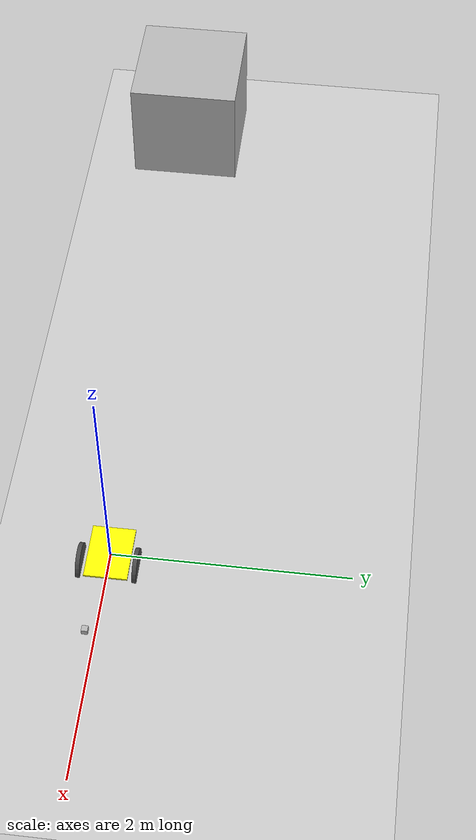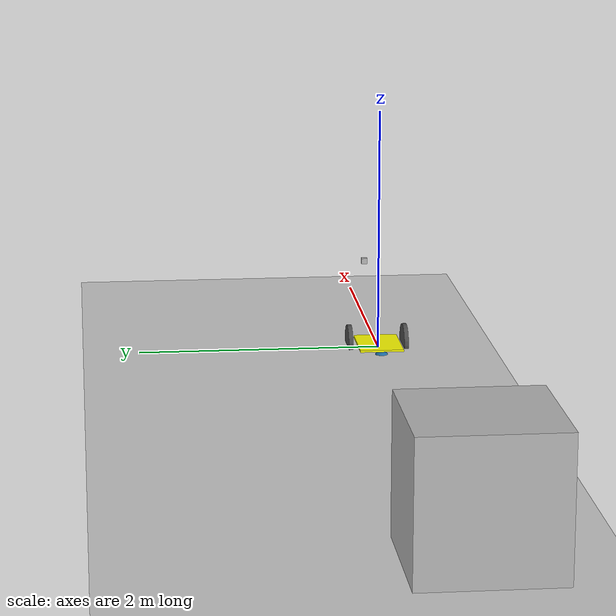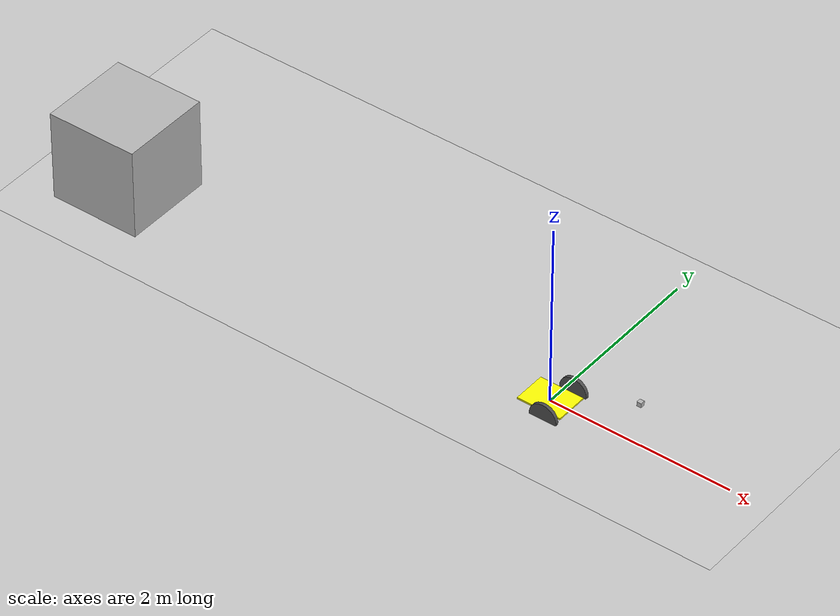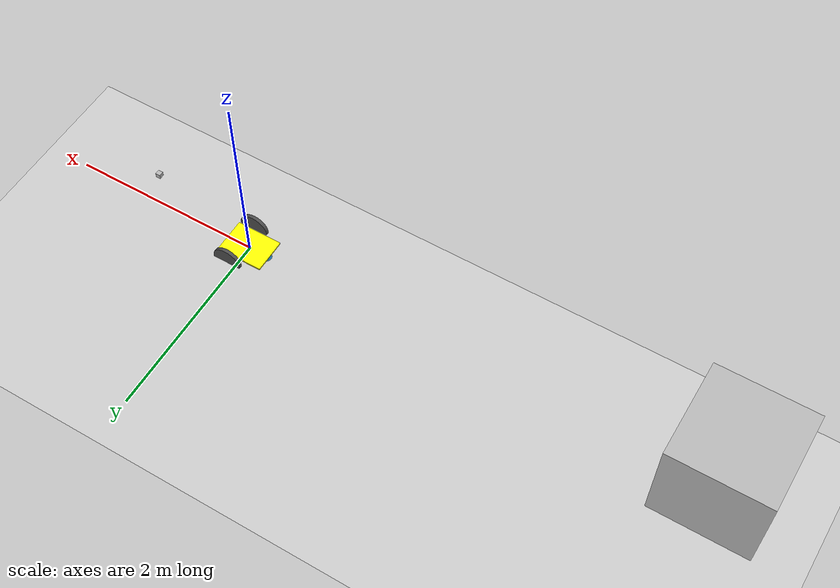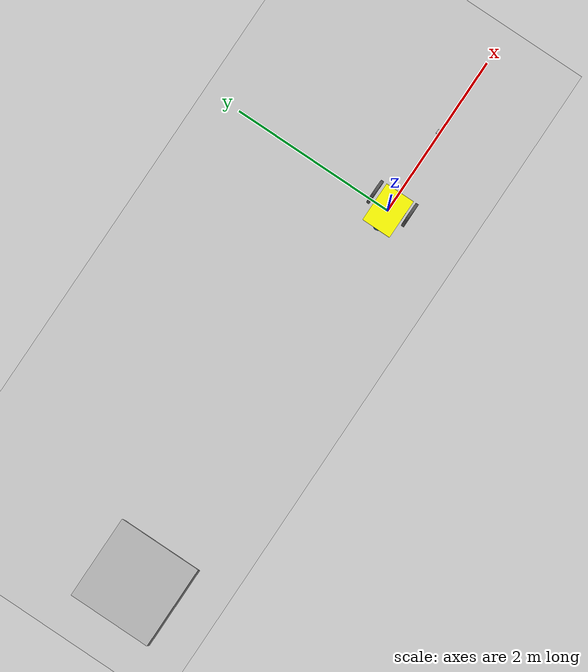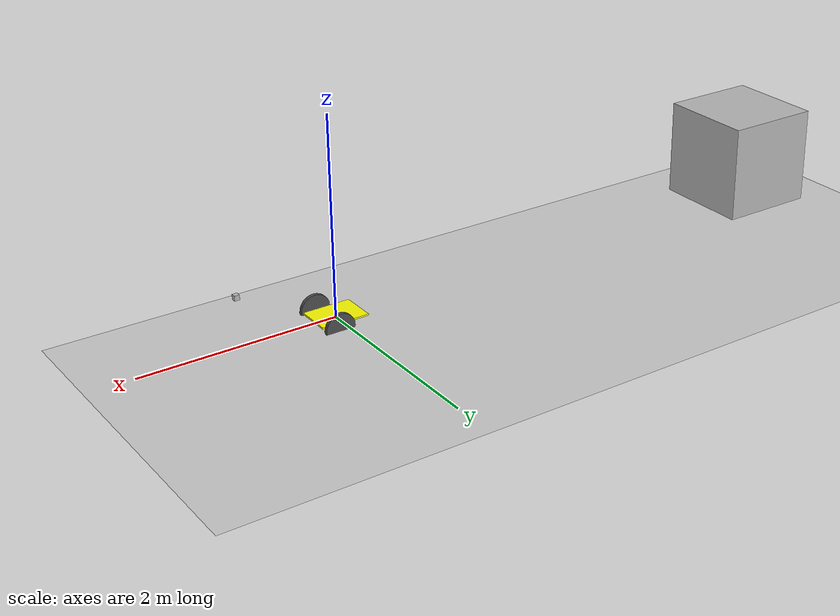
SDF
<?xml version="1.0" ?>
<sdf version="1.5">
  <world name="default">
    <include>
      <uri>model://ground_plane</uri>
    </include>
    <include>
      <uri>model://sun</uri>
    </include>

    <model name="box">
      <pose>-5 0 0.5 0 0 0</pose>
      <link name="link">
        <collision name="collision">
          <geometry>
            <box>
              <size>1 1 1</size>
            </box>
          </geometry>
        </collision>
        <visual name="visual">
          <geometry>
            <box>
              <size>1 1 1</size>
            </box>
          </geometry>
          <material>
            <script>Gazebo/WoodPallet</script>
          </material>
        </visual>
      </link>

      <plugin name="FRC_blue_box_plugin" filename='libFRCBlueRobotPlugin.so'>
        <topic>/blue/joy1</topic>
      </plugin>
    </model>

    <include>
      <uri>model://minion</uri>
    </include>

    <model name="camera">
      <pose>1 0 0.5 0 0 0</pose>
      <static>true</static>
      <link name="link">
        <visual name="visual">
          <geometry>
            <box>
              <size>0.05 0.05 0.05</size>
            </box>
          </geometry>
          <material>
            <script>Gazebo/Grey</script>
          </material>
        </visual>
        <sensor name="camera" type="camera">
          <camera>
            <horizontal_fov>1.047</horizontal_fov>
            <image>
              <width>320</width>
              <height>240</height>
            </image>
            <clip>
              <near>0.1</near>
              <far>100</far>
            </clip>
          </camera>
          <always_on>1</always_on>
          <update_rate>30</update_rate>
          <visualize>true</visualize>
        </sensor>
      </link>

      <!-- Load the plugin to control the FRC camera -->
      <plugin name="FRC_blue_camera_plugin" filename='libFRCBlueCameraPlugin.so'>
        <!-- Parameters -->
        <topic>/blue/joy1</topic>
      </plugin>
    </model>

    <model name="camera">
      <pose>1 0 0.5 0 0 0</pose>
      <static>true</static>
      <link name="link">
        <visual name="visual">
          <geometry>
            <box>
              <size>0.05 0.05 0.05</size>
            </box>
          </geometry>
          <material>
            <script>Gazebo/Grey</script>
          </material>
        </visual>
        <sensor name="camera" type="camera">
          <camera>
            <horizontal_fov>1.047</horizontal_fov>
            <image>
              <width>320</width>
              <height>240</height>
            </image>
            <clip>
              <near>0.1</near>
              <far>100</far>
            </clip>
          </camera>
          <always_on>1</always_on>
          <update_rate>30</update_rate>
          <visualize>true</visualize>
        </sensor>
      </link>

      <!-- Load the plugin to control the FRC camera -->
      <plugin name="FRC_blue_camera_plugin" filename='libFRCBlueCameraPlugin.so'>
        <!-- Parameters -->
        <topic>/blue/joy1</topic>
      </plugin>
    </model>

  </world>
</sdf>

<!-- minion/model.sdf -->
<sdf version='1.6'>
  <model name='minion'>
    <link name='link_1'>
      <pose frame=''>0.003148 -0.001669 0.029855 0 -0 0</pose>
      <inertial>
        <mass>7.54242</mass>
        <inertia>
          <ixx>0.0826754</ixx>
          <ixy>0</ixy>
          <ixz>0</ixz>
          <iyy>0.147959</iyy>
          <iyz>0</iyz>
          <izz>0.230316</izz>
        </inertia>
        <pose frame=''>0 0 0 0 -0 0</pose>
      </inertial>
      <self_collide>0</self_collide>
      <kinematic>0</kinematic>
      <enable_wind>0</enable_wind>
      <gravity>1</gravity>
      <visual name='visual'>
        <pose frame=''>0 0 0 0 -0 0</pose>
        <geometry>
          <box>
            <size>0.484922 0.362331 0.015899</size>
          </box>
        </geometry>
        <material>
          <lighting>1</lighting>
          <script>
            <uri>file://media/materials/scripts/gazebo.material</uri>
            <name>Gazebo/Grey</name>
          </script>
          <ambient>1 1 0 1</ambient>
          <diffuse>1 1 0 1</diffuse>
          <specular>1 1 0 1</specular>
          <emissive>0 0 0 1</emissive>
          <shader type='vertex'>
            <normal_map>__default__</normal_map>
          </shader>
        </material>
        <cast_shadows>1</cast_shadows>
        <transparency>0</transparency>
      </visual>
      <collision name='collision'>
        <laser_retro>0</laser_retro>
        <max_contacts>10</max_contacts>
        <pose frame=''>0 0 0 0 -0 0</pose>
        <geometry>
          <box>
            <size>0.484922 0.362331 0.015899</size>
          </box>
        </geometry>
        <surface>
          <friction>
            <ode>
              <mu>1</mu>
              <mu2>1</mu2>
              <fdir1>0 0 0</fdir1>
              <slip1>0</slip1>
              <slip2>0</slip2>
            </ode>
            <torsional>
              <coefficient>1</coefficient>
              <patch_radius>0</patch_radius>
              <surface_radius>0</surface_radius>
              <use_patch_radius>1</use_patch_radius>
              <ode>
                <slip>0</slip>
              </ode>
            </torsional>
          </friction>
          <bounce>
            <restitution_coefficient>0</restitution_coefficient>
            <threshold>1e+06</threshold>
          </bounce>
          <contact>
            <collide_without_contact>0</collide_without_contact>
            <collide_without_contact_bitmask>1</collide_without_contact_bitmask>
            <collide_bitmask>1</collide_bitmask>
            <ode>
              <soft_cfm>0</soft_cfm>
              <soft_erp>0.2</soft_erp>
              <kp>1e+13</kp>
              <kd>1</kd>
              <max_vel>0.01</max_vel>
              <min_depth>0</min_depth>
            </ode>
            <bullet>
              <split_impulse>1</split_impulse>
              <split_impulse_penetration_threshold>-0.01</split_impulse_penetration_threshold>
              <soft_cfm>0</soft_cfm>
              <soft_erp>0.2</soft_erp>
              <kp>1e+13</kp>
              <kd>1</kd>
            </bullet>
          </contact>
        </surface>
      </collision>
    </link>
    <link name='link_2_clone'>
      <pose frame=''>0.097443 -0.23143 0.015119 1.5708 -0 0</pose>
      <inertial>
        <mass>6.91063</mass>
        <inertia>
          <ixx>0.0403878</ixx>
          <ixy>0</ixy>
          <ixz>0</ixz>
          <iyy>0.0403878</iyy>
          <iyz>0</iyz>
          <izz>0.0793251</izz>
        </inertia>
        <pose frame=''>0 0 0 0 -0 0</pose>
      </inertial>
      <self_collide>0</self_collide>
      <kinematic>0</kinematic>
      <velocity_decay>
        <angular>0.1</angular>
      </velocity_decay>
      <enable_wind>0</enable_wind>
      <gravity>1</gravity>
      <visual name='visual'>
        <pose frame=''>0 0 0 0 -0 0</pose>
        <geometry>
          <cylinder>
            <radius>0.151517</radius>
            <length>0.035488</length>
          </cylinder>
        </geometry>
        <material>
          <lighting>1</lighting>
          <script>
            <uri>file://media/materials/scripts/gazebo.material</uri>
            <name>Gazebo/DarkGrey</name>
          </script>
          <ambient>0.3 0.3 0.3 1</ambient>
          <diffuse>0.1 0.1 0.1 1</diffuse>
          <specular>0.01 0.01 0.01 1</specular>
          <emissive>0 0 0 1</emissive>
          <shader type='vertex'>
            <normal_map>__default__</normal_map>
          </shader>
        </material>
        <cast_shadows>1</cast_shadows>
        <transparency>0</transparency>
      </visual>
      <collision name='collision'>
        <laser_retro>0</laser_retro>
        <max_contacts>10</max_contacts>
        <pose frame=''>0 0 0 0 -0 0</pose>
        <geometry>
          <cylinder>
            <radius>0.151517</radius>
            <length>0.035488</length>
          </cylinder>
        </geometry>
        <surface>
          <friction>
            <ode>
              <mu>1</mu>
              <mu2>1</mu2>
              <fdir1>0 0 0</fdir1>
              <slip1>0</slip1>
              <slip2>0</slip2>
            </ode>
            <torsional>
              <coefficient>1</coefficient>
              <patch_radius>0</patch_radius>
              <surface_radius>0</surface_radius>
              <use_patch_radius>1</use_patch_radius>
              <ode>
                <slip>0</slip>
              </ode>
            </torsional>
          </friction>
          <bounce>
            <restitution_coefficient>0</restitution_coefficient>
            <threshold>1e+06</threshold>
          </bounce>
          <contact>
            <collide_without_contact>0</collide_without_contact>
            <collide_without_contact_bitmask>1</collide_without_contact_bitmask>
            <collide_bitmask>1</collide_bitmask>
            <ode>
              <soft_cfm>0</soft_cfm>
              <soft_erp>0.2</soft_erp>
              <kp>1e+13</kp>
              <kd>1</kd>
              <max_vel>0.01</max_vel>
              <min_depth>0</min_depth>
            </ode>
            <bullet>
              <split_impulse>1</split_impulse>
              <split_impulse_penetration_threshold>-0.01</split_impulse_penetration_threshold>
              <soft_cfm>0</soft_cfm>
              <soft_erp>0.2</soft_erp>
              <kp>1e+13</kp>
              <kd>1</kd>
            </bullet>
          </contact>
        </surface>
      </collision>
    </link>
    <link name='link_2_clone_1'>
      <pose frame=''>0.097443 0.234768 0.015119 1.5708 -0 0</pose>
      <inertial>
        <mass>6.91063</mass>
        <inertia>
          <ixx>0.0403878</ixx>
          <ixy>0</ixy>
          <ixz>0</ixz>
          <iyy>0.0403878</iyy>
          <iyz>0</iyz>
          <izz>0.0793251</izz>
        </inertia>
        <pose frame=''>0 0 0 0 -0 0</pose>
      </inertial>
      <self_collide>0</self_collide>
      <kinematic>0</kinematic>
      <velocity_decay>
        <angular>0.1</angular>
      </velocity_decay>
      <enable_wind>0</enable_wind>
      <gravity>1</gravity>
      <visual name='visual'>
        <pose frame=''>0 0 0 0 -0 0</pose>
        <geometry>
          <cylinder>
            <radius>0.151517</radius>
            <length>0.035488</length>
          </cylinder>
        </geometry>
        <material>
          <lighting>1</lighting>
          <script>
            <uri>file://media/materials/scripts/gazebo.material</uri>
            <name>Gazebo/DarkGrey</name>
          </script>
          <ambient>0.3 0.3 0.3 1</ambient>
          <diffuse>0.1 0.1 0.1 1</diffuse>
          <specular>0.01 0.01 0.01 1</specular>
          <emissive>0 0 0 1</emissive>
          <shader type='pixel'>
            <normal_map>__default__</normal_map>
          </shader>
        </material>
        <cast_shadows>1</cast_shadows>
        <transparency>0</transparency>
      </visual>
      <collision name='collision'>
        <laser_retro>0</laser_retro>
        <max_contacts>10</max_contacts>
        <pose frame=''>0 0 0 0 -0 0</pose>
        <geometry>
          <cylinder>
            <radius>0.151517</radius>
            <length>0.035488</length>
          </cylinder>
        </geometry>
        <surface>
          <friction>
            <ode>
              <mu>1</mu>
              <mu2>1</mu2>
              <fdir1>0 0 0</fdir1>
              <slip1>0</slip1>
              <slip2>0</slip2>
            </ode>
            <torsional>
              <coefficient>1</coefficient>
              <patch_radius>0</patch_radius>
              <surface_radius>0</surface_radius>
              <use_patch_radius>1</use_patch_radius>
              <ode>
                <slip>0</slip>
              </ode>
            </torsional>
          </friction>
          <bounce>
            <restitution_coefficient>0</restitution_coefficient>
            <threshold>1e+06</threshold>
          </bounce>
          <contact>
            <collide_without_contact>0</collide_without_contact>
            <collide_without_contact_bitmask>1</collide_without_contact_bitmask>
            <collide_bitmask>1</collide_bitmask>
            <ode>
              <soft_cfm>0</soft_cfm>
              <soft_erp>0.2</soft_erp>
              <kp>1e+13</kp>
              <kd>1</kd>
              <max_vel>0.01</max_vel>
              <min_depth>0</min_depth>
            </ode>
            <bullet>
              <split_impulse>1</split_impulse>
              <split_impulse_penetration_threshold>-0.01</split_impulse_penetration_threshold>
              <soft_cfm>0</soft_cfm>
              <soft_erp>0.2</soft_erp>
              <kp>1e+13</kp>
              <kd>1</kd>
            </bullet>
          </contact>
        </surface>
      </collision>
    </link>
    <link name='link_3'>
      <pose frame=''>-0.198034 -0.001669 -0.060092 0 -0 0</pose>
      <inertial>
        <mass>14.3476</mass>
        <inertia>
          <ixx>0.0337357</ixx>
          <ixy>0</ixy>
          <ixz>0</ixz>
          <iyy>0.0337357</iyy>
          <iyz>0</iyz>
          <izz>0.0337357</izz>
        </inertia>
        <pose frame=''>0 0 0 0 -0 0</pose>
      </inertial>
      <self_collide>0</self_collide>
      <kinematic>0</kinematic>
      <enable_wind>0</enable_wind>
      <gravity>1</gravity>
      <visual name='visual'>
        <pose frame=''>0 0 0 0 -0 0</pose>
        <geometry>
          <sphere>
            <radius>0.07667</radius>
          </sphere>
        </geometry>
        <material>
          <lighting>1</lighting>
          <script>
            <uri>file://media/materials/scripts/gazebo.material</uri>
            <name>Gazebo/Grey</name>
          </script>
          <ambient>0 0 1 1</ambient>
          <diffuse>0.11 0.416 0.624 1</diffuse>
          <specular>0 0 1 1</specular>
          <emissive>0 0 0 1</emissive>
          <shader type='vertex'>
            <normal_map>__default__</normal_map>
          </shader>
        </material>
        <cast_shadows>1</cast_shadows>
        <transparency>0</transparency>
      </visual>
      <collision name='collision'>
        <laser_retro>0</laser_retro>
        <max_contacts>10</max_contacts>
        <pose frame=''>0 0 0 0 -0 0</pose>
        <geometry>
          <sphere>
            <radius>0.07667</radius>
          </sphere>
        </geometry>
        <surface>
          <friction>
            <ode>
              <mu>1</mu>
              <mu2>1</mu2>
              <fdir1>0 0 0</fdir1>
              <slip1>0</slip1>
              <slip2>0</slip2>
            </ode>
            <torsional>
              <coefficient>1</coefficient>
              <patch_radius>0</patch_radius>
              <surface_radius>0</surface_radius>
              <use_patch_radius>1</use_patch_radius>
              <ode>
                <slip>0</slip>
              </ode>
            </torsional>
          </friction>
          <bounce>
            <restitution_coefficient>0</restitution_coefficient>
            <threshold>1e+06</threshold>
          </bounce>
          <contact>
            <collide_without_contact>0</collide_without_contact>
            <collide_without_contact_bitmask>1</collide_without_contact_bitmask>
            <collide_bitmask>1</collide_bitmask>
            <ode>
              <soft_cfm>0</soft_cfm>
              <soft_erp>0.2</soft_erp>
              <kp>1e+13</kp>
              <kd>1</kd>
              <max_vel>0.01</max_vel>
              <min_depth>0</min_depth>
            </ode>
            <bullet>
              <split_impulse>1</split_impulse>
              <split_impulse_penetration_threshold>-0.01</split_impulse_penetration_threshold>
              <soft_cfm>0</soft_cfm>
              <soft_erp>0.2</soft_erp>
              <kp>1e+13</kp>
              <kd>1</kd>
            </bullet>
          </contact>
        </surface>
      </collision>
    </link>
    <joint name='link_1_JOINT_0' type='revolute'>
      <parent>link_1</parent>
      <child>link_2_clone</child>
      <pose frame=''>0 0 0 0 -0 0</pose>
      <axis>
        <xyz>0 0 1</xyz>
        <use_parent_model_frame>0</use_parent_model_frame>
        <limit>
          <lower>-1.79769e+308</lower>
          <upper>1.79769e+308</upper>
          <effort>-1</effort>
          <velocity>-1</velocity>
        </limit>
        <dynamics>
          <spring_reference>0</spring_reference>
          <spring_stiffness>0</spring_stiffness>
          <damping>0</damping>
          <friction>0</friction>
        </dynamics>
      </axis>
      <physics>
        <ode>
          <limit>
            <cfm>0</cfm>
            <erp>0.2</erp>
          </limit>
          <suspension>
            <cfm>0</cfm>
            <erp>0.2</erp>
          </suspension>
        </ode>
      </physics>
    </joint>
    <joint name='link_1_JOINT_1' type='revolute'>
      <parent>link_1</parent>
      <child>link_2_clone_1</child>
      <pose frame=''>0 0 0 0 -0 0</pose>
      <axis>
        <xyz>0 0 1</xyz>
        <use_parent_model_frame>0</use_parent_model_frame>
        <limit>
          <lower>-1.79769e+308</lower>
          <upper>1.79769e+308</upper>
          <effort>-1</effort>
          <velocity>-1</velocity>
        </limit>
        <dynamics>
          <spring_reference>0</spring_reference>
          <spring_stiffness>0</spring_stiffness>
          <damping>0</damping>
          <friction>0</friction>
        </dynamics>
      </axis>
      <physics>
        <ode>
          <limit>
            <cfm>0</cfm>
            <erp>0.2</erp>
          </limit>
          <suspension>
            <cfm>0</cfm>
            <erp>0.2</erp>
          </suspension>
        </ode>
      </physics>
    </joint>
    <joint name='link_1_JOINT_2' type='ball'>
      <parent>link_1</parent>
      <child>link_3</child>
      <pose frame=''>0 0 0 0 -0 0</pose>
      <physics>
        <ode>
          <limit>
            <cfm>0</cfm>
            <erp>0.2</erp>
          </limit>
          <suspension>
            <cfm>0</cfm>
            <erp>0.2</erp>
          </suspension>
        </ode>
      </physics>
    </joint>
    <static>0</static>
    <allow_auto_disable>1</allow_auto_disable>
    <plugin name='diff_drive' filename='libFRCBlueDiffDrivePlugin.so'>
      <topic>/blue/joy1</topic>
      <torque>35</torque>
      <turn_rate>8</turn_rate>
    </plugin>
  </model>
</sdf>
